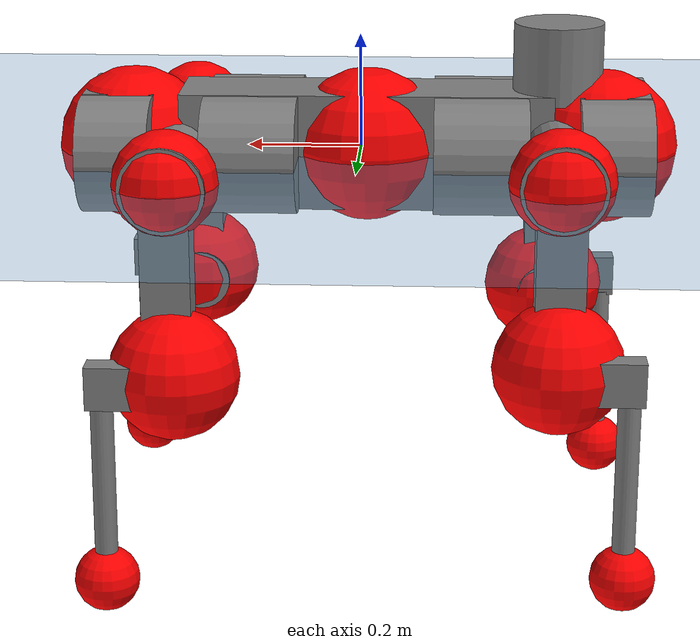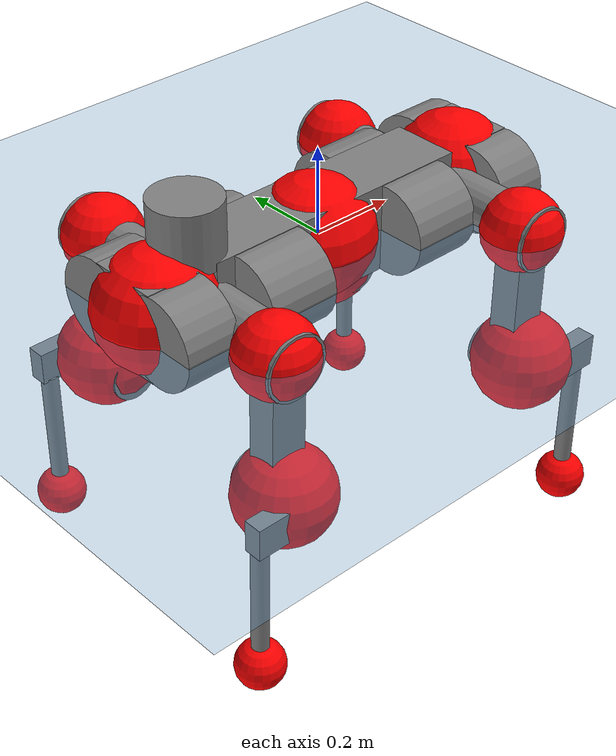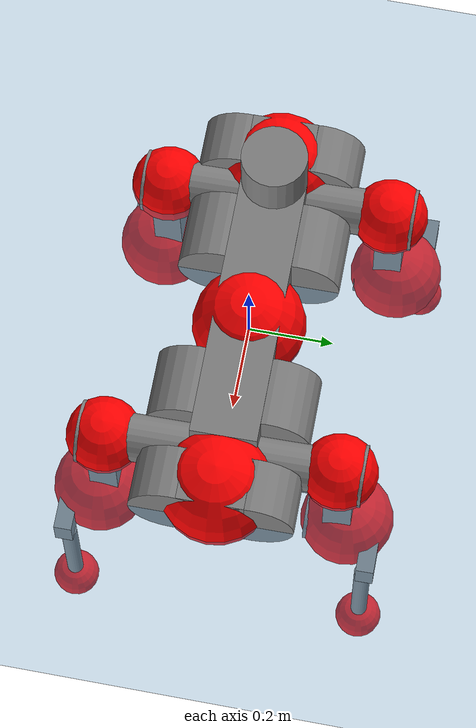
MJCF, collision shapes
<mujoco model="anymal_c">
  <compiler angle="radian" assetdir="assets" balanceinertia="true" inertiafromgeom="false"/>

  <option timestep="0.005" density="1.2" viscosity="2e-05"/>

  <size nkey="1"/>

  <visual>
    <quality shadowsize="8192"/>
    <map shadowclip="0.5"/>
  </visual>

  <default>
    <default class="/">
      <material specular="0" shininess="0.25"/>
      <geom contype="0" conaffinity="0" group="1" solref="-1000 -80"/>
      <site size="0.01 0.005 0.005" group="5"/>
      <general forcelimited="true" forcerange="-80 80" biastype="affine" gainprm="80" biasprm="0 -80 -2"/>
      <default class="anymal_c">
        <joint armature="0.01" damping="0.01" frictionloss="0.1"/>
        <default class="visual">
          <geom type="mesh" group="2"/>
          <default class="visual_zflip"/>
        </default>
        <default class="collision">
          <geom type="cylinder" group="3"/>
          <default class="foot">
            <geom size="0.03 0 0" type="sphere" condim="6" priority="1" friction="0.8 0.02 0.01" solimp="0.015 1 0.03"/>
          </default>
        </default>
      </default>
      <default class="reward_collision_sphere">
        <geom group="5" rgba="1 0 0 1"/>
      </default>
    </default>
  </default>

  <asset>
    <texture type="skybox" colorspace="auto" name="//unnamed_texture_0" builtin="gradient" rgb1="0.95 0.95 0.95" rgb2="0.95 0.95 0.95" width="100" height="600"/>
    <texture type="2d" colorspace="auto" name="texplane" builtin="checker" rgb1="0.345 0.575 0.748" rgb2="0.345 0.575 0.748" markrgb="1 1 1" width="512" height="512"/>
    <texture type="2d" colorspace="linear" name="base" file="base.png"/>
    <texture type="2d" colorspace="linear" name="top_shell" file="top_shell.png"/>
    <texture type="2d" colorspace="linear" name="bottom_shell" file="bottom_shell.png"/>
    <texture type="2d" colorspace="linear" name="remote" file="remote.png"/>
    <texture type="2d" colorspace="linear" name="hatch" file="hatch.png"/>
    <texture type="2d" colorspace="linear" name="handle" file="handle.png"/>
    <texture type="2d" colorspace="linear" name="face" file="face.png"/>
    <texture type="2d" colorspace="linear" name="battery" file="battery.png"/>
    <texture type="2d" colorspace="linear" name="lidar_cage" file="lidar_cage.png"/>
    <texture type="2d" colorspace="linear" name="depth_camera" file="depth_camera.png"/>
    <texture type="2d" colorspace="linear" name="wide_angle_camera" file="wide_angle_camera.png"/>
    <texture type="2d" colorspace="linear" name="lidar" file="lidar.png"/>
    <texture type="2d" colorspace="linear" name="drive" file="drive.png"/>
    <texture type="2d" colorspace="linear" name="hip_l" file="hip_l.png"/>
    <texture type="2d" colorspace="linear" name="shank_l" file="shank_l.png"/>
    <texture type="2d" colorspace="linear" name="foot" file="foot.png"/>
    <texture type="2d" colorspace="linear" name="thigh" file="thigh.png"/>
    <texture type="2d" colorspace="linear" name="shank_r" file="shank_r.png"/>
    <texture type="2d" colorspace="linear" name="hip_r" file="hip_r.png"/>
    <material name="MatPlane" class="/" texture="texplane" texuniform="true" texrepeat="2 2" specular="0.9" shininess="0.5"/>
    <material name="black_plastic" class="/" rgba="0.007 0.007 0.007 1"/>
    <material name="green" class="/" rgba="0.052 0.178 0.033 1"/>
    <material name="red" class="/" rgba="0.178 0.006 0.005 1"/>
    <material name="yellow" class="/" rgba="0.178 0.119 0.006 1"/>
    <material name="lwl" class="/" rgba="0.8 0.8 0.8 1"/>
    <material name="base" class="/" texture="base"/>
    <material name="top_shell" class="/" texture="top_shell"/>
    <material name="bottom_shell" class="/" texture="bottom_shell"/>
    <material name="hip_l" class="/" texture="hip_l"/>
    <material name="thigh" class="/" texture="thigh"/>
    <material name="shank_l" class="/" texture="shank_l"/>
    <material name="foot" class="/" texture="foot"/>
    <material name="hip_r" class="/" texture="hip_r"/>
    <material name="shank" class="/" texture="shank_r"/>
    <material name="hatch" class="/" texture="hatch"/>
    <material name="remote" class="/" texture="remote"/>
    <material name="handle" class="/" texture="handle"/>
    <material name="face" class="/" texture="face"/>
    <material name="depth_camera" class="/" texture="depth_camera"/>
    <material name="wide_angle_camera" class="/" texture="wide_angle_camera"/>
    <material name="battery" class="/" texture="battery"/>
    <material name="lidar_cage" class="/" texture="lidar_cage"/>
    <material name="lidar" class="/" texture="lidar"/>
    <material name="drive" class="/" texture="drive"/>
    <mesh name="base_0" class="/" file="base_0.obj"/>
    <mesh name="base_1" class="/" file="base_1.obj"/>
    <mesh name="base_2" class="/" file="base_2.obj"/>
    <mesh name="base_3" class="/" file="base_3.obj"/>
    <mesh name="base_4" class="/" file="base_4.obj"/>
    <mesh name="base_5" class="/" file="base_5.obj"/>
    <mesh name="top_shell" class="/" file="top_shell.obj"/>
    <mesh name="bottom_shell" class="/" file="bottom_shell.obj"/>
    <mesh name="remote" class="/" file="remote.obj"/>
    <mesh name="handle" class="/" file="handle.obj"/>
    <mesh name="face" class="/" file="face.obj"/>
    <mesh name="wide_angle_camera" class="/" file="wide_angle_camera.obj"/>
    <mesh name="depth_camera" class="/" file="depth_camera.obj"/>
    <mesh name="battery" class="/" file="battery.obj"/>
    <mesh name="lidar_cage" class="/" file="lidar_cage.obj"/>
    <mesh name="lidar" class="/" file="lidar.obj"/>
    <mesh name="drive" class="/" file="drive.obj"/>
    <mesh name="hip_l" class="/" file="hip_l.obj"/>
    <mesh name="thigh" class="/" file="thigh.obj"/>
    <mesh name="shank_l" class="/" file="shank_l.obj"/>
    <mesh name="foot" class="/" file="foot.obj"/>
    <mesh name="hip_r" class="/" file="hip_r.obj"/>
    <mesh name="hatch" class="/" file="hatch.obj"/>
    <mesh name="shank_r" class="/" file="shank_r.obj"/>
  </asset>

  <worldbody>
    <geom name="floor" class="/" size="100 100 0.125" type="plane" group="0" material="MatPlane"/>
    <light name="toplight_shadow" class="/" pos="0 0 5" dir="0.0990148 0.0990148 -0.990148" type="directional" ambient="0.04 0.04 0.04" diffuse="0.55 0.55 0.55" specular="0.12 0.12 0.12"/>
    <light name="toplight_fill" class="/" pos="0 0 5" dir="0.0990148 0.0990148 -0.990148" type="directional" castshadow="false" ambient="0.04 0.04 0.04" diffuse="0.3 0.3 0.3" specular="0.08 0.08 0.08"/>
    <body name="trunk" childclass="anymal_c" pos="-0.0115576 -0.0015099 0.00399737" quat="0.999987 0.00408364 7.27878e-05 0.00298295">
      <inertial pos="0.0131378 -0.00374268 0.056374" quat="0.50003 0.500035 0.499984 0.49995" mass="30.2808" diaginertia="0.403996 2.44421 0.382307"/>
      <joint name="//unnamed_joint_0" type="free" armature="0" damping="0" frictionloss="0"/>
      <geom name="//unnamed_geom_1" class="visual" material="green" mesh="base_0"/>
      <geom name="//unnamed_geom_2" class="visual" material="yellow" mesh="base_1"/>
      <geom name="//unnamed_geom_3" class="visual" material="red" mesh="base_2"/>
      <geom name="//unnamed_geom_4" class="visual" material="black_plastic" mesh="base_3"/>
      <geom name="//unnamed_geom_5" class="visual" material="lwl" mesh="base_4"/>
      <geom name="//unnamed_geom_6" class="visual" material="base" mesh="base_5"/>
      <geom name="trunk_1" class="collision" size="0.326911 0.0789096 0.101455" type="box"/>
      <geom name="trunk_2" class="collision" size="0.101455 0.0817278" pos="0.200093 0.0927878 0" quat="0.707107 0 0.707107 0"/>
      <geom name="trunk_3" class="collision" size="0.101455 0.0817278" pos="-0.200093 0.0927878 0" quat="0.707107 0 0.707107 0"/>
      <geom name="trunk_4" class="collision" size="0.101455 0.0817278" pos="0.200093 -0.0927878 0" quat="0.707107 0 0.707107 0"/>
      <geom name="trunk_5" class="collision" size="0.101455 0.0817278" pos="-0.200093 -0.0927878 0" quat="0.707107 0 0.707107 0"/>
      <geom name="//unnamed_geom_12" class="visual" material="top_shell" mesh="top_shell"/>
      <geom name="//unnamed_geom_13" class="visual" material="bottom_shell" mesh="bottom_shell"/>
      <geom name="//unnamed_geom_14" class="visual" material="remote" mesh="remote"/>
      <geom name="//unnamed_geom_15" class="visual" material="handle" mesh="handle"/>
      <geom name="//unnamed_geom_16" class="visual" pos="0.381327 0 0" quat="1 0 0 0" material="face" mesh="face"/>
      <geom name="trunk_6" class="collision" size="0.0620004 0.0789096 0.101455" pos="0.431926 0 0" type="box"/>
      <geom name="//unnamed_geom_18" class="collision" size="0.101455 0.0620004" pos="0.431926 0.0927878 0" quat="0.707107 0 0.707107 0"/>
      <geom name="//unnamed_geom_19" class="collision" size="0.101455 0.0620004" pos="0.431926 -0.0927878 0" quat="0.707107 0 0.707107 0"/>
      <geom name="//unnamed_geom_20" class="visual" pos="0.424713 0 -0.0348251" quat="0.965926 0 0.258819 0" material="depth_camera" mesh="depth_camera"/>
      <geom name="//unnamed_geom_21" class="visual" pos="0.471944 0 0.0170108" material="wide_angle_camera" mesh="wide_angle_camera"/>
      <geom name="//unnamed_geom_22" class="visual_zflip" pos="-0.381327 0 0" quat="0 0 0 1" material="face" mesh="face"/>
      <geom name="trunk_7" class="collision" size="0.0620004 0.0789096 0.101455" pos="-0.431926 0 0" quat="0 0 0 1" type="box"/>
      <geom name="//unnamed_geom_24" class="collision" size="0.101455 0.0620004" pos="-0.431926 -0.0927878 0" quat="0 -0.707107 0 0.707107"/>
      <geom name="//unnamed_geom_25" class="collision" size="0.101455 0.0620004" pos="-0.431926 0.0927878 0" quat="0 -0.707107 0 0.707107"/>
      <geom name="//unnamed_geom_26" class="visual" pos="-0.424713 0 -0.0348251" quat="0 -0.258819 0 0.965926" material="depth_camera" mesh="depth_camera"/>
      <geom name="//unnamed_geom_27" class="visual_zflip" pos="-0.471944 0 0.0170108" quat="0 0 0 1" material="wide_angle_camera" mesh="wide_angle_camera"/>
      <geom name="//unnamed_geom_28" class="visual" material="battery" mesh="battery"/>
      <geom name="//unnamed_geom_29" class="visual" pos="0 0.106682 0.031366" quat="0.683013 -0.183013 0.183013 0.683013" material="depth_camera" mesh="depth_camera"/>
      <geom name="//unnamed_geom_30" class="visual" pos="0 -0.106682 0.031366" quat="0.683013 0.183013 0.183013 -0.683013" material="depth_camera" mesh="depth_camera"/>
      <geom name="//unnamed_geom_31" class="visual" pos="-0.334869 0 0.0835201" quat="1 0 0 0" material="lidar_cage" mesh="lidar_cage"/>
      <geom name="trunk_8" class="collision" size="0.0789096 0.0676368" pos="-0.334869 0 0.1517"/>
      <geom name="//unnamed_geom_33" class="visual" pos="-0.334869 0.000159338 0.161586" quat="0.707107 0 0 -0.707107" material="lidar" mesh="lidar"/>
      <geom name="//unnamed_geom_34" class="visual" pos="0.275899 0.137789 3.26392e-09" quat="0.258819 0.965926 0 0" material="drive" mesh="drive"/>
      <geom name="//unnamed_geom_35" class="visual" pos="0.275899 -0.137789 -3.26392e-09" quat="0.258819 -0.965926 0 0" material="drive" mesh="drive"/>
      <geom name="//unnamed_geom_36" class="visual" pos="-0.275899 0.137789 -3.26392e-09" quat="0 0 0.965926 -0.258819" material="drive" mesh="drive"/>
      <geom name="//unnamed_geom_37" class="visual" pos="-0.275899 -0.137789 3.26392e-09" quat="0 0 -0.965926 -0.258819" material="drive" mesh="drive"/>
      <geom name="//unnamed_geom_38" class="visual" pos="0.106716 0 0.082952" quat="1 0 0 0" material="hatch" mesh="hatch"/>
      <geom name="//unnamed_geom_39" class="reward_collision_sphere" size="0.135274"/>
      <geom name="//unnamed_geom_40" class="reward_collision_sphere" size="0.135274" pos="0.413986 0 0"/>
      <geom name="//unnamed_geom_41" class="reward_collision_sphere" size="0.135274" pos="-0.413986 0 0"/>
      <site name="imu" pos="0.222005 -0.013375 0.00421889" size="0.0112728"/>
      <camera name="track" pos="0 -2.65108 0" quat="0.707107 0.707107 0 0" mode="trackcom"/>
      <camera name="ego_camera" pos="0.413986 0 -0.0454531" quat="-0.5 -0.5 0.5 0.5"/>
      <body name="LF_HIP" pos="0.276435 0.139518 -0.00332568" quat="0.25769 0.966226 0.00149276 -0.000140406">
        <inertial pos="0.0516414 -0.0131043 -0.0100902" quat="-0.122571 0.710908 -0.133499 0.679532" mass="4.15356" diaginertia="0.00327493 0.0188519 0.00621345"/>
        <joint name="LF_HAA" pos="0 0 0" axis="0.998403 -0.00768206 -0.0559635" stiffness="0.0121833" range="-0.941193 0.468855" armature="0.0119897" damping="0" frictionloss="0.115558"/>
        <geom name="//unnamed_geom_42" class="visual" pos="0 0.000192002 -3.15361e-05" quat="0.258819 -0.965926 0 0" material="hip_l" mesh="hip_l"/>
        <geom name="//unnamed_geom_43" class="visual" pos="0.0551061 -0.0720456 -0.040196" quat="0.183013 -0.683013 0.683013 0.183013" material="drive" mesh="drive"/>
        <geom name="//unnamed_geom_44" class="collision" size="0.056364 0.0789096" pos="0.0551062 -0.0158532 -0.00784635" quat="-0.353553 -0.612372 0.612372 -0.353553"/>
        <body name="LF_THIGH" pos="0.0508106 -0.096064 -0.052672" quat="0.179262 -0.684836 0.68253 0.181708">
          <inertial pos="0.021432 0.00608714 -0.269256" quat="0.993082 -0.00473496 -0.0817316 0.0841708" mass="4.6917" diaginertia="0.0205587 0.13568 0.00734217"/>
          <joint name="LF_HFE" pos="0 0 0" axis="0.999939 0.0109493 0.00150661" stiffness="0.0586356" range="-3.21501 3.13712" armature="0.0132531" damping="0.0176683" frictionloss="0.126137"/>
          <geom name="//unnamed_geom_45" class="visual" pos="-0.00806927 -1.27153e-05 0" quat="0.707107 0 0 -0.707107" material="thigh" mesh="thigh"/>
          <geom name="//unnamed_geom_46" class="collision" size="0.0732732 0.0450912" pos="0.0367988 0 0" quat="0.5 0.5 -0.5 -0.5"/>
          <geom name="//unnamed_geom_47" class="collision" size="0.042273 0.0338184 0.1593" pos="0.0275991 0 -0.160579" quat="0.707107 0 0 -0.707107" type="box"/>
          <geom name="//unnamed_geom_48" class="visual" pos="0.0922729 0 -0.323854" quat="1 0 0 0" material="drive" mesh="drive"/>
          <geom name="//unnamed_geom_49" class="collision" size="0.056364 0.0789096" pos="0.0278751 0 -0.323854" quat="0.707107 0 0.707107 0"/>
          <geom name="//unnamed_geom_50" class="reward_collision_sphere" size="0.0901823" pos="0.0229992 0 0"/>
          <body name="LF_SHANK" pos="0.0934938 0.0100474 -0.327142" quat="0.999996 -0.00279948 0.00049121 0.000604279">
            <inertial pos="0.0133493 -0.0823983 -0.0980391" quat="0.992379 -0.121735 0.00920835 -0.0167247" mass="0.822157" diaginertia="0.00608695 0.0297484 0.00176618"/>
            <joint name="LF_KFE" pos="0 0 0" axis="0.999934 -0.00332064 0.0110274" range="-2.94119 3.1725" armature="0.0089672" damping="0.0502779" frictionloss="0.0866304"/>
            <geom name="//unnamed_geom_51" class="visual" pos="-0.00263121 -0.0140298 0" quat="0.707107 0 0 -0.707107" material="shank_l" mesh="shank_l"/>
            <geom name="LF_kfe_act" class="collision" size="0.0676368 0.0225456" pos="0.0183994 0 0" quat="0.5 0.5 -0.5 -0.5"/>
            <geom name="//unnamed_geom_53" class="collision" size="0.0648174 0.0380457 0.0214183" pos="0.0183994 -0.0762172 0" quat="0.5 0.5 -0.5 -0.5" type="box"/>
            <geom name="//unnamed_geom_54" class="visual" pos="0.0120062 -0.121102 -0.384045" quat="0.382683 0 0 -0.92388" material="foot" mesh="foot"/>
            <geom name="LF_calf" class="collision" size="0.0197274 0.15923" pos="0.0120056 -0.116581 -0.192022" quat="0.707107 0 0 -0.707107"/>
            <geom name="LF_foot" class="foot" size="0.0213323" pos="0.0120056 -0.116581 -0.358478" quat="0.707107 0 0 -0.707107"/>
            <geom name="//unnamed_geom_57" class="reward_collision_sphere" size="0.112728" pos="-0.0459985 0 0"/>
            <geom name="//unnamed_geom_58" class="reward_collision_sphere" size="0.056364" pos="0.0120056 -0.116581 -0.358478"/>
            <site name="LF_foot" class="foot" pos="0.0120056 -0.116581 -0.358478" quat="0.707107 0 0 -0.707107" size="0.0112728"/>
          </body>
        </body>
      </body>
      <body name="RF_HIP" pos="0.276847 -0.13982 0.0101963" quat="0.2566 -0.966513 -0.00122387 0.00283287">
        <inertial pos="0.0476717 0.0295567 -0.0101756" quat="0.107197 0.674062 0.159574 0.713222" mass="4.04219" diaginertia="0.00448625 0.0213379 0.00713616"/>
        <joint name="RF_HAA" pos="0 0 0" axis="0.999716 -0.00312719 0.0236132" stiffness="0.00281122" range="-0.535464 0.718015" armature="0.010453" damping="0.017555" frictionloss="0.161984"/>
        <geom name="//unnamed_geom_59" class="visual" pos="0 -0.000192 -3.1536e-05" quat="0.258819 0.965926 0 0" material="hip_r" mesh="hip_r"/>
        <geom name="//unnamed_geom_60" class="visual" pos="0.0551062 0.0720456 -0.040196" quat="0.183013 0.683013 0.683013 -0.183013" material="drive" mesh="drive"/>
        <geom name="//unnamed_geom_61" class="collision" size="0.056364 0.0789096" pos="0.0551062 0.0158532 -0.00784635" quat="-0.353553 0.612372 0.612372 0.353553"/>
        <body name="RF_THIGH" pos="0.0563059 0.107614 -0.0477778" quat="0.18199 0.683125 0.683102 -0.183283">
          <inertial pos="0.0233403 0.00759996 -0.280353" quat="0.994599 -0.0251135 -0.0763468 0.0656748" mass="4.29156" diaginertia="0.0206353 0.131991 0.007453"/>
          <joint name="RF_HFE" pos="0 0 0" axis="0.999972 0.00467661 -0.00578786" stiffness="0.0259677" range="-3.15823 2.97759" armature="0.0116312" damping="0.0129137" frictionloss="0.0924098"/>
          <geom name="//unnamed_geom_62" class="visual" pos="-0.00806927 -1.27153e-05 0" quat="0.707107 0 0 -0.707107" material="thigh" mesh="thigh"/>
          <geom name="//unnamed_geom_63" class="collision" size="0.0732732 0.0450912" pos="0.0367988 0 0" quat="0.5 0.5 0.5 0.5"/>
          <geom name="//unnamed_geom_64" class="collision" size="0.042273 0.0338184 0.1593" pos="0.0275991 0 -0.160579" quat="0.707107 0 0 0.707107" type="box"/>
          <geom name="//unnamed_geom_65" class="visual" pos="0.0922729 0 -0.323854" quat="1 0 0 0" material="drive" mesh="drive"/>
          <geom name="//unnamed_geom_66" class="collision" size="0.056364 0.0789096" pos="0.0278751 0 -0.323854" quat="0.707107 0 0.707107 0"/>
          <geom name="//unnamed_geom_67" class="reward_collision_sphere" size="0.0901823" pos="0.0229992 0 0"/>
          <body name="RF_SHANK" pos="0.0932261 0.00805551 -0.321852" quat="1 6.87085e-06 -0.000107939 6.64911e-05">
            <inertial pos="0.00403152 0.0827948 -0.0898959" quat="0.997349 0.069 -0.00566826 0.0223966" mass="0.819568" diaginertia="0.00666579 0.0374089 0.00229296"/>
            <joint name="RF_KFE" pos="0 0 0" axis="0.998608 -0.00284658 -0.0526623" stiffness="0.0441104" range="-3.09614 3.00314" armature="0.0125105" damping="0" frictionloss="0.13011"/>
            <geom name="//unnamed_geom_68" class="visual" pos="-0.0026312 0.0140297 0" quat="0.707107 0 0 0.707107" material="shank" mesh="shank_r"/>
            <geom name="RF_kfe_act" class="collision" size="0.0676368 0.0225456" pos="0.0183994 0 0" quat="0.5 0.5 0.5 0.5"/>
            <geom name="//unnamed_geom_70" class="collision" size="0.0648174 0.0380457 0.0214183" pos="0.0183994 0.0762172 0" quat="0.5 0.5 0.5 0.5" type="box"/>
            <geom name="//unnamed_geom_71" class="visual" pos="0.012005 0.121102 -0.384045" quat="0.382683 0 0 0.92388" material="foot" mesh="foot"/>
            <geom name="RF_calf" class="collision" size="0.0197274 0.15923" pos="0.0120056 0.116581 -0.192022" quat="0.707107 0 0 0.707107"/>
            <geom name="RF_foot" class="foot" size="0.0354742" pos="0.0120056 0.116581 -0.358478" quat="0.707107 0 0 0.707107"/>
            <geom name="//unnamed_geom_74" class="reward_collision_sphere" size="0.112728" pos="-0.0459985 0 0"/>
            <geom name="//unnamed_geom_75" class="reward_collision_sphere" size="0.056364" pos="0.0120056 0.116581 -0.358478"/>
            <site name="RF_foot" class="foot" pos="0.0120056 0.116581 -0.358478" quat="0.707107 0 0 0.707107" size="0.0112728"/>
          </body>
        </body>
      </body>
      <body name="LH_HIP" pos="-0.276548 0.139073 0.00727175" quat="0.000685787 0.000410902 0.965978 -0.258624">
        <inertial pos="0.0494659 0.00964582 -0.00219666" quat="0.0761612 0.685979 0.131059 0.711657" mass="3.44748" diaginertia="0.00390201 0.0195833 0.0054421"/>
        <joint name="LH_HAA" pos="0 0 0" axis="0.999982 9.33648e-05 -0.00599318" range="-0.504924 0.829201" armature="0.0155574" damping="0.0139913" frictionloss="0.0594818"/>
        <geom name="//unnamed_geom_76" class="visual" pos="0 -0.000192 -3.1536e-05" quat="-0.258819 -0.965926 0 0" material="hip_r" mesh="hip_r"/>
        <geom name="//unnamed_geom_77" class="visual" pos="0.0551062 0.0720456 -0.040196" quat="0.183013 0.683013 0.683013 -0.183013" material="drive" mesh="drive"/>
        <geom name="//unnamed_geom_78" class="collision" size="0.056364 0.0789096" pos="0.0551062 0.0158532 -0.00784635" quat="-0.353553 0.612372 0.612372 0.353553"/>
        <body name="LH_THIGH" pos="0.0557802 0.105303 -0.056991" quat="0.183007 0.683213 0.682727 -0.183336">
          <inertial pos="0.0279676 -0.000328569 -0.278979" quat="0.994151 -0.00702814 -0.0732056 0.0790907" mass="3.74745" diaginertia="0.0200283 0.120649 0.00719296"/>
          <joint name="LH_HFE" pos="0 0 0" axis="0.999607 0.000469082 -0.0280186" range="-3.10992 3.17038" armature="0.00737359" damping="0.0328507" frictionloss="0.109617"/>
          <geom name="//unnamed_geom_79" class="visual" pos="-0.00806927 -1.27153e-05 0" quat="0.707107 0 0 -0.707107" material="thigh" mesh="thigh"/>
          <geom name="//unnamed_geom_80" class="collision" size="0.0732732 0.0450912" pos="0.0367988 0 0" quat="0.5 0.5 -0.5 -0.5"/>
          <geom name="//unnamed_geom_81" class="collision" size="0.042273 0.0338184 0.1593" pos="0.0275991 0 -0.160579" quat="0.707107 0 0 -0.707107" type="box"/>
          <geom name="//unnamed_geom_82" class="visual" pos="0.0922729 0 -0.323854" quat="1 0 0 0" material="drive" mesh="drive"/>
          <geom name="//unnamed_geom_83" class="collision" size="0.056364 0.0789096" pos="0.0278751 0 -0.323854" quat="0.707107 0 0.707107 0"/>
          <geom name="//unnamed_geom_84" class="reward_collision_sphere" size="0.0901823" pos="0.0229992 0 0"/>
          <body name="LH_SHANK" pos="0.0935676 0.00022839 -0.313723" quat="1 -0.000165738 1.5425e-07 0.000156972">
            <inertial pos="0.00743519 0.0700632 -0.0901834" quat="0.993298 0.107061 0.0135111 0.0414161" mass="0.819447" diaginertia="0.00691372 0.0375253 0.00235361"/>
            <joint name="LH_KFE" pos="0 0 0" axis="1 -0.00028979 0.00036051" stiffness="0.0575361" range="-3.15129 3.06623" armature="0.00866038" damping="0.0362628" frictionloss="0.051663"/>
            <geom name="//unnamed_geom_85" class="visual" pos="-0.0026312 0.0140297 0" quat="-0.707107 0 0 -0.707107" material="shank" mesh="shank_r"/>
            <geom name="LH_kfe_act" class="collision" size="0.0676368 0.0225456" pos="0.0183994 0 0" quat="0.5 0.5 -0.5 -0.5"/>
            <geom name="//unnamed_geom_87" class="collision" size="0.0648174 0.0380457 0.0214183" pos="0.0183994 0.0762172 0" quat="0.5 0.5 -0.5 -0.5" type="box"/>
            <geom name="//unnamed_geom_88" class="visual" pos="0.012005 0.121102 -0.384045" quat="-0.382683 0 0 -0.92388" material="foot" mesh="foot"/>
            <geom name="LH_calf" class="collision" size="0.0197274 0.15923" pos="0.0120056 0.116581 -0.192022" quat="0.707107 0 0 -0.707107"/>
            <geom name="LH_foot" class="foot" size="0.0393851" pos="0.0120056 0.116581 -0.358478" quat="0.707107 0 0 -0.707107"/>
            <geom name="//unnamed_geom_91" class="reward_collision_sphere" size="0.112728" pos="-0.0459985 0 0"/>
            <geom name="//unnamed_geom_92" class="reward_collision_sphere" size="0.056364" pos="0.0120056 0.116581 -0.358478"/>
            <site name="LH_foot" class="foot" pos="0.0120056 0.116581 -0.358478" quat="0.707107 0 0 -0.707107" size="0.0112728"/>
          </body>
        </body>
      </body>
      <body name="RH_HIP" pos="-0.278243 -0.133227 0.00138887" quat="0.00237802 -0.00104434 -0.964718 -0.263271">
        <inertial pos="0.0412048 -0.0275491 0.00138304" quat="-0.0968478 0.705362 -0.130017 0.690058" mass="3.98683" diaginertia="0.00380354 0.0198196 0.00617428"/>
        <joint name="RH_HAA" pos="0 0 0" axis="0.99841 0.00491836 -0.0561509" range="-0.769606 0.500103" armature="0.0137302" damping="0.0114783" frictionloss="0.112281"/>
        <geom name="//unnamed_geom_93" class="visual" pos="0 0.000192002 -3.15361e-05" quat="-0.258819 0.965926 0 0" material="hip_l" mesh="hip_l"/>
        <geom name="//unnamed_geom_94" class="visual" pos="0.0551061 -0.0720456 -0.040196" quat="-0.183013 0.683013 -0.683013 -0.183013" material="drive" mesh="drive"/>
        <geom name="//unnamed_geom_95" class="collision" size="0.056364 0.0789096" pos="0.0551062 -0.0158532 -0.00784635" quat="0.353553 0.612372 -0.612372 0.353553"/>
        <body name="RH_THIGH" pos="0.0562633 -0.0946283 -0.0366832" quat="-0.182906 0.683065 -0.683172 -0.182331">
          <inertial pos="0.0276513 0.000929976 -0.278579" quat="0.993199 -0.00746212 -0.0854939 0.0786784" mass="4.86186" diaginertia="0.0197772 0.11234 0.00797231"/>
          <joint name="RH_HFE" pos="0 0 0" axis="1 -0.000875063 -0.000310154" range="-3.1459 2.96233" armature="0.0106429" damping="0.0146167" frictionloss="0.111984"/>
          <geom name="//unnamed_geom_96" class="visual" pos="-0.00806927 -1.27153e-05 0" quat="0.707107 0 0 -0.707107" material="thigh" mesh="thigh"/>
          <geom name="//unnamed_geom_97" class="collision" size="0.0732732 0.0450912" pos="0.0367988 0 0" quat="0.5 0.5 0.5 0.5"/>
          <geom name="//unnamed_geom_98" class="collision" size="0.042273 0.0338184 0.1593" pos="0.0275991 0 -0.160579" quat="0.707107 0 0 0.707107" type="box"/>
          <geom name="//unnamed_geom_99" class="visual" pos="0.0922729 0 -0.323854" quat="1 0 0 0" material="drive" mesh="drive"/>
          <geom name="//unnamed_geom_100" class="collision" size="0.056364 0.0789096" pos="0.0278751 0 -0.323854" quat="0.707107 0 0.707107 0"/>
          <geom name="//unnamed_geom_101" class="reward_collision_sphere" size="0.0901823" pos="0.0229992 0 0"/>
          <body name="RH_SHANK" pos="0.0916843 0.00291327 -0.327827" quat="1 0.000464514 3.45719e-05 -0.00016043">
            <inertial pos="0.0121301 -0.0802076 -0.0936724" quat="0.993593 -0.105739 0.0186771 -0.0352545" mass="0.821426" diaginertia="0.00642248 0.0383743 0.00188751"/>
            <joint name="RH_KFE" pos="0 0 0" axis="0.998848 -0.0308748 -0.0367346" range="-3.08741 3.10689" armature="0.0120782" damping="0" frictionloss="0.119746"/>
            <geom name="//unnamed_geom_102" class="visual" pos="-0.00263121 -0.0140298 0" quat="0.707107 0 0 -0.707107" material="shank_l" mesh="shank_l"/>
            <geom name="RH_kfe_act" class="collision" size="0.0676368 0.0225456" pos="0.0183994 0 0" quat="0.5 0.5 0.5 0.5"/>
            <geom name="//unnamed_geom_104" class="collision" size="0.0648174 0.0380457 0.0214183" pos="0.0183994 -0.0762172 0" quat="0.5 0.5 0.5 0.5" type="box"/>
            <geom name="//unnamed_geom_105" class="visual" pos="0.0120062 -0.121102 -0.384045" quat="0.382683 0 0 -0.92388" material="foot" mesh="foot"/>
            <geom name="RH_calf" class="collision" size="0.0197274 0.15923" pos="0.0120056 -0.116581 -0.192022" quat="0.707107 0 0 0.707107"/>
            <geom name="RH_foot" class="foot" size="0.0449771" pos="0.0120056 -0.116581 -0.358478" quat="0.707107 0 0 0.707107"/>
            <geom name="//unnamed_geom_108" class="reward_collision_sphere" size="0.112728" pos="-0.0459985 0 0"/>
            <geom name="//unnamed_geom_109" class="reward_collision_sphere" size="0.056364" pos="0.0120056 -0.116581 -0.358478"/>
            <site name="RH_foot" class="foot" pos="0.0120056 -0.116581 -0.358478" quat="0.707107 0 0 0.707107" size="0.0112728"/>
          </body>
        </body>
      </body>
    </body>
  </worldbody>

  <contact>
    <pair class="/" geom1="floor" geom2="LF_foot" name="//unnamed_contact_0"/>
    <pair class="/" geom1="floor" geom2="RF_foot" name="//unnamed_contact_1"/>
    <pair class="/" geom1="floor" geom2="LH_foot" name="//unnamed_contact_2"/>
    <pair class="/" geom1="floor" geom2="RH_foot" name="//unnamed_contact_3"/>
  </contact>

  <actuator>
    <general name="LF_HAA" class="/" joint="LF_HAA" forcerange="-93.6369 93.6369" gainprm="78.7313" biasprm="0 -78.7313 -2.66082"/>
    <general name="LF_HFE" class="/" joint="LF_HFE" forcerange="-106.147 106.147" gainprm="78.7313" biasprm="0 -78.7313 -2.66082"/>
    <general name="LF_KFE" class="/" joint="LF_KFE" forcerange="-87.9396 87.9396" gainprm="78.7313" biasprm="0 -78.7313 -2.66082"/>
    <general name="RF_HAA" class="/" joint="RF_HAA" forcerange="-86.9429 86.9429" gainprm="78.7313" biasprm="0 -78.7313 -2.66082"/>
    <general name="RF_HFE" class="/" joint="RF_HFE" forcerange="-74.8601 74.8601" gainprm="78.7313" biasprm="0 -78.7313 -2.66082"/>
    <general name="RF_KFE" class="/" joint="RF_KFE" forcerange="-88.3151 88.3151" gainprm="78.7313" biasprm="0 -78.7313 -2.66082"/>
    <general name="LH_HAA" class="/" joint="LH_HAA" forcerange="-54.5409 54.5409" gainprm="78.7313" biasprm="0 -78.7313 -2.66082"/>
    <general name="LH_HFE" class="/" joint="LH_HFE" forcerange="-104.954 104.954" gainprm="78.7313" biasprm="0 -78.7313 -2.66082"/>
    <general name="LH_KFE" class="/" joint="LH_KFE" forcerange="-125.864 125.864" gainprm="78.7313" biasprm="0 -78.7313 -2.66082"/>
    <general name="RH_HAA" class="/" joint="RH_HAA" forcerange="-111.811 111.811" gainprm="78.7313" biasprm="0 -78.7313 -2.66082"/>
    <general name="RH_HFE" class="/" joint="RH_HFE" forcerange="-56.0536 56.0536" gainprm="78.7313" biasprm="0 -78.7313 -2.66082"/>
    <general name="RH_KFE" class="/" joint="RH_KFE" forcerange="-92.7582 92.7582" gainprm="78.7313" biasprm="0 -78.7313 -2.66082"/>
  </actuator>

  <sensor>
    <gyro site="imu" name="imu_angular_velocity"/>
    <velocimeter site="imu" name="imu_linear_velocity"/>
    <framelinvel objtype="site" objname="LF_foot" name="LF_foot_global_linear_velocity"/>
    <framelinvel objtype="site" objname="RF_foot" name="RF_foot_global_linear_velocity"/>
    <framelinvel objtype="site" objname="LH_foot" name="LH_foot_global_linear_velocity"/>
    <framelinvel objtype="site" objname="RH_foot" name="RH_foot_global_linear_velocity"/>
  </sensor>

  <keyframe>
    <key name="home" qpos="0 0 0.55 1 0 0 0 0 0.4 -0.8 0 -0.4 0.8 0 -0.4 0.8 0 0.4 -0.8"/>
  </keyframe>
</mujoco>
